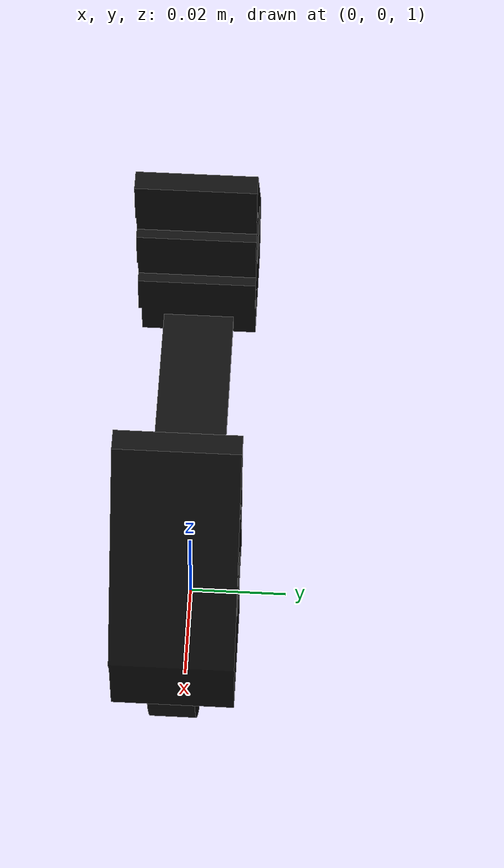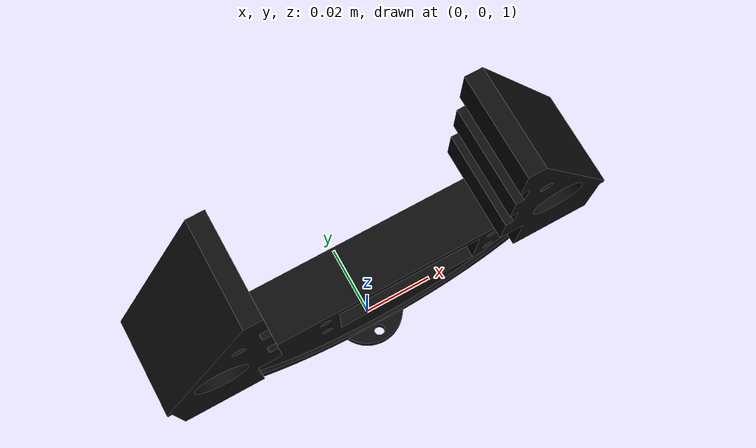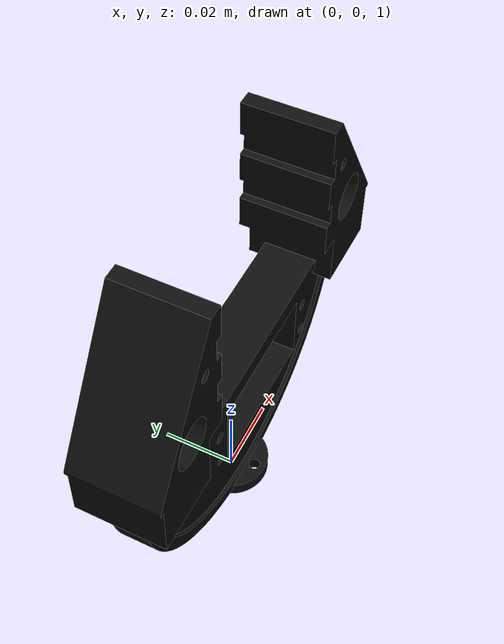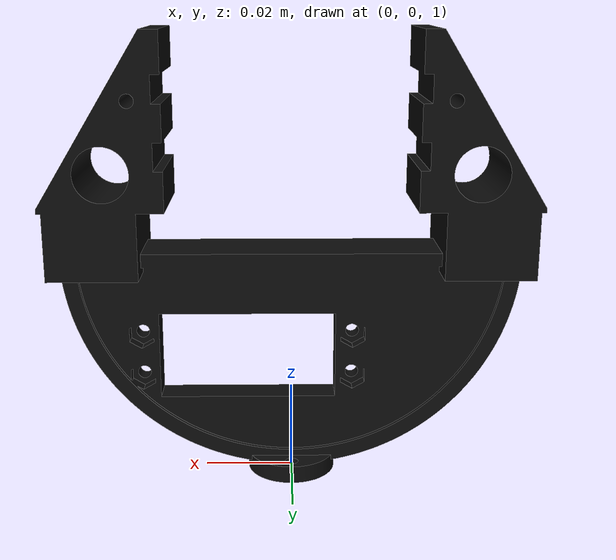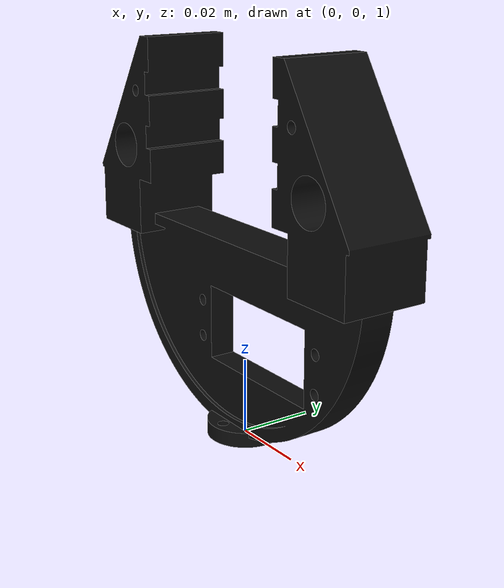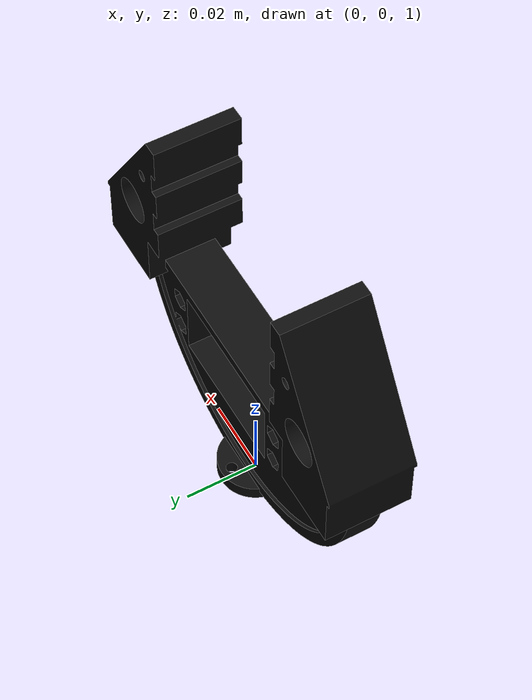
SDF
<?xml version="1.0" ?>
<sdf version="1.7">
    <world name="default">
        <!-- Physics -->
        <plugin
            filename="libignition-gazebo-physics-system.so"
            name="ignition::gazebo::systems::Physics"></plugin>
        <!-- Forwards simulation state to the GUI -->
        <plugin
            filename="libignition-gazebo-scene-broadcaster-system.so"
            name="ignition::gazebo::systems::SceneBroadcaster"></plugin>
        <!-- Processes user commands, like translate and create -->
        <plugin
            filename="libignition-gazebo-user-commands-system.so"
            name="ignition::gazebo::systems::UserCommands"></plugin>
        <!-- Generates rendering sensor data -->
        <plugin
            filename="libignition-gazebo-sensors-system.so"
            name="ignition::gazebo::systems::Sensors">
            <!-- ogre2 not working with just the MESA_GL_VERSION_OVERRIDE=3.3 trick -->
            <render_engine>ogre2</render_engine>
        </plugin>
        <plugin filename="libignition-gazebo-imu-system.so"
        		name="ignition::gazebo::systems::Imu"></plugin>
        <!--light-->
        <light type="directional" name="sun">
            <cast_shadows>true</cast_shadows>
            <pose>0 0 10 0 0 0</pose>
            <diffuse>0.8 0.8 0.8 1</diffuse>
            <specular>0.2 0.2 0.2 1</specular>
            <attenuation>
                <range>1000</range>
                <constant>0.3</constant>
                <linear>0.01</linear>
                <quadratic>0.001</quadratic>
            </attenuation>
            <direction>-0.5 0.1 -0.9</direction>
        </light>
        <!--ground_plane-->
        <model name="ground_plane">
            <static>true</static>
            <link name="link">
                <collision name="collision">
                    <geometry>
                        <plane>
                            <normal>0 0 1</normal>
                        </plane>
                    </geometry>
                </collision>
                <visual name="visual">
                    <geometry>
                        <plane>
                            <normal>0 0 1</normal>
                            <size>100 100</size>
                        </plane>
                    </geometry>
                    <material>
                        <ambient>0.8 0.8 0.8 1</ambient>
                        <diffuse>0.8 0.8 0.8 1</diffuse>
                        <specular>0.8 0.8 0.8 1</specular>
                    </material>
                </visual>
            </link>
        </model>
        <!-- parallel_gripper -->
        <include>
            <uri>model://parallel_gripper</uri>
        </include>
    </world>
</sdf>

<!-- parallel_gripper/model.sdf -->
<!-- |    This document was autogenerated by xmacro4sdf from model.sdf.xmacro          | -->
<!-- |    EDITING THIS FILE BY HAND IS NOT RECOMMENDED                                 | -->
<sdf version="1.7">
	<!--include defination-->
	<!--model-->
	<model canonical_link="gripper_base_link" name="parallel_gripper">
		<pose>0 0 1.0 0 0 0</pose>
		<link name="gripper_base_link">
			<pose relative_to="__model__">0 0 0 0 0 0</pose>
			<inertial>
				<pose>0 0 0.027 0 0 0</pose>
				<mass>0.05</mass>
				<inertia>
					<ixx>1.3816666666666668e-05</ixx>
					<ixy>0</ixy>
					<ixz>0</ixz>
					<iyy>5.635416666666666e-05</iyy>
					<iyz>0</iyz>
					<izz>4.587083333333333e-05</izz>
				</inertia>
			</inertial>
			<collision name="collision">
				<pose>0 0 0 0 0 0</pose>
				<geometry>
					<mesh>
						<uri>model://parallel_gripper/meshes/gripper_base.stl</uri>
					</mesh>
				</geometry>
			</collision>
			<visual name="visual">
				<pose>0 0 0 0 0 0</pose>
				<geometry>
					<mesh>
						<uri>model://parallel_gripper/meshes/gripper_base.stl</uri>
					</mesh>
				</geometry>
				<material>
					<ambient>0.1 0.1 0.1</ambient>
					<diffuse>0.05 0.05 0.05</diffuse>
					<specular>0.6 0.6 0.6</specular>
				</material>
			</visual>
		</link>
		<joint name="left_finger_joint" type="prismatic">
			<pose relative_to="gripper_base_link">-0.043 0 0.0485 0 0 0</pose>
			<parent>gripper_base_link</parent>
			<child>left_finger_link</child>
			<axis>
				<limit>
					<lower>0</lower>
					<upper>0.25</upper>
				</limit>
				<xyz>1 0 0</xyz>
			</axis>
		</joint>
		<link name="left_finger_link">
			<pose relative_to="left_finger_joint">0 0 0 0 0 0</pose>
			<inertial>
				<pose>0 0 0.020 0 0 0</pose>
				<mass>0.01</mass>
				<inertia>
					<ixx>2.781666666666667e-06</ixx>
					<ixy>0</ixy>
					<ixz>0</ixz>
					<iyy>2.948333333333333e-06</iyy>
					<iyz>0</iyz>
					<izz>1.0483333333333334e-06</izz>
				</inertia>
			</inertial>
			<collision name="collision">
				<pose>0 0 0 0 0 0</pose>
				<geometry>
					<mesh>
						<uri>model://parallel_gripper/meshes/finger.stl</uri>
					</mesh>
				</geometry>
			</collision>
			<visual name="visual">
				<pose>0 0 0 0 0 0</pose>
				<geometry>
					<mesh>
						<uri>model://parallel_gripper/meshes/finger.stl</uri>
					</mesh>
				</geometry>
				<material>
					<ambient>0.1 0.1 0.1</ambient>
					<diffuse>0.05 0.05 0.05</diffuse>
					<specular>0.6 0.6 0.6</specular>
				</material>
			</visual>
		</link>
		<joint name="right_finger_joint" type="prismatic">
			<pose relative_to="gripper_base_link">0.043 0 0.0485 0 0 3.14159</pose>
			<parent>gripper_base_link</parent>
			<child>right_finger_link</child>
			<axis>
				<limit>
					<lower>0</lower>
					<upper>0.25</upper>
				</limit>
				<xyz>1 0 0</xyz>
			</axis>
		</joint>
		<link name="right_finger_link">
			<pose relative_to="right_finger_joint">0 0 0 0 0 0</pose>
			<inertial>
				<pose>0 0 0.020 0 0 0</pose>
				<mass>0.01</mass>
				<inertia>
					<ixx>2.781666666666667e-06</ixx>
					<ixy>0</ixy>
					<ixz>0</ixz>
					<iyy>2.948333333333333e-06</iyy>
					<iyz>0</iyz>
					<izz>1.0483333333333334e-06</izz>
				</inertia>
			</inertial>
			<collision name="collision">
				<pose>0 0 0 0 0 0</pose>
				<geometry>
					<mesh>
						<uri>model://parallel_gripper/meshes/finger.stl</uri>
					</mesh>
				</geometry>
			</collision>
			<visual name="visual">
				<pose>0 0 0 0 0 0</pose>
				<geometry>
					<mesh>
						<uri>model://parallel_gripper/meshes/finger.stl</uri>
					</mesh>
				</geometry>
				<material>
					<ambient>0.1 0.1 0.1</ambient>
					<diffuse>0.05 0.05 0.05</diffuse>
					<specular>0.6 0.6 0.6</specular>
				</material>
			</visual>
		</link>
		<joint name="world_parallel_gripper_joint" type="fixed">
			<parent>world</parent>
			<child>gripper_base_link</child>
		</joint>
		<!--plugins for parallel_gripper-->
		<plugin filename="ignition-gazebo-joint-position-controller-system" name="ignition::gazebo::systems::JointPositionController">
			<joint_name>left_finger_joint</joint_name>
			<p_gain>100</p_gain>
			<i_gain>2</i_gain>
			<d_gain>5</d_gain>
			<i_max>100.0</i_max>
			<i_min>-100.0</i_min>
		</plugin>
		<plugin filename="ignition-gazebo-joint-position-controller-system" name="ignition::gazebo::systems::JointPositionController">
			<joint_name>right_finger_joint</joint_name>
			<p_gain>100</p_gain>
			<i_gain>2</i_gain>
			<d_gain>5</d_gain>
			<i_max>100.0</i_max>
			<i_min>-100.0</i_min>
		</plugin>
	</model>
</sdf>
